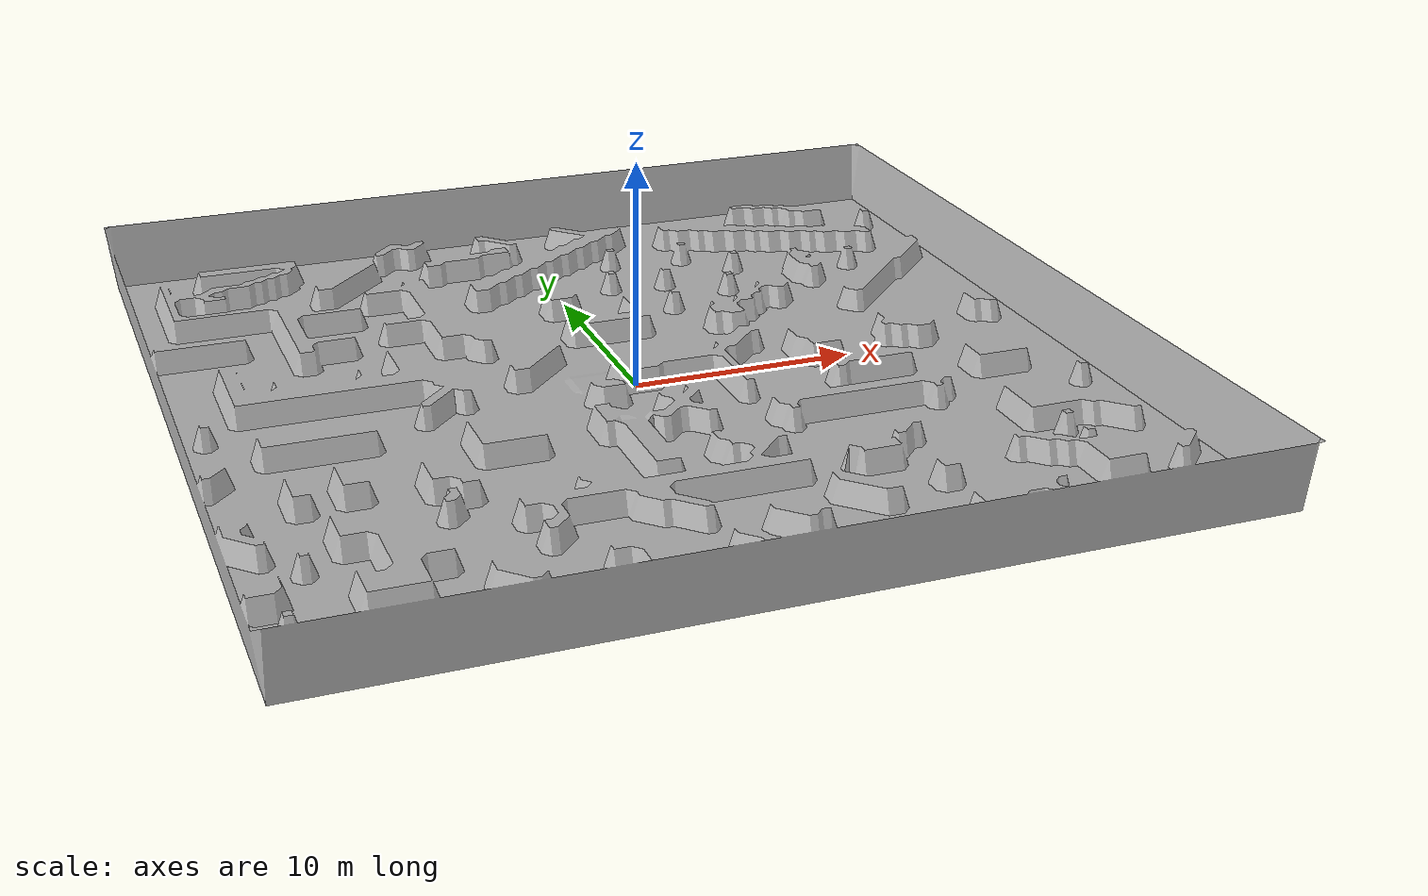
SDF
<sdf version='1.6'>
  <world name='default'>
    <include>
      <uri>model://sun</uri>
    </include>

    <include>
      <name>terrain_4</name>
      <uri>model://terrain_4</uri>
      <pose>0 0 0 0 0 0</pose>
    </include>

    <gui fullscreen='0'>
      <camera name='user_camera'>
        <pose frame=''>9.0 -12.0 6.0 0.0 0.3 2.2</pose>
        <view_controller>orbit</view_controller>
        <projection_type>perspective</projection_type>
      </camera>
    </gui>

  </world>
</sdf>

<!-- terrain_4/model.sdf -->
<sdf version="1.5">
  <model name="terrain_4">
    <pose>0 0 0 0 0 0</pose>
    <static>true</static>
    <link name="body">
      <visual name="visual">
        <geometry>
          <mesh><uri>model://terrain_4/media/terrain_4.dae</uri></mesh>
        </geometry>
      </visual>
      <collision name="collision">
        <geometry>
          <mesh><uri>model://terrain_4/media/terrain_4.dae</uri></mesh>
        </geometry>
        <surface>
	      <bounce>
		<restitution_coefficient>0</restitution_coefficient>
		<threshold>1e+06</threshold>
	      </bounce>
	      <contact>
		<collide_without_contact>0</collide_without_contact>
		<collide_without_contact_bitmask>1</collide_without_contact_bitmask>
		<collide_bitmask>1</collide_bitmask>
		<ode>
		  <soft_cfm>0</soft_cfm>
		  <soft_erp>0.2</soft_erp>
		  <kp>1e+6</kp>
		  <kd>1e+3</kd>
		  <max_vel>0</max_vel>
		  <min_depth>0.001</min_depth>
		</ode>
		<bullet>
		  <split_impulse>1</split_impulse>
		  <split_impulse_penetration_threshold>-0.01</split_impulse_penetration_threshold>
		  <soft_cfm>0</soft_cfm>
		  <soft_erp>0.2</soft_erp>
		  <kp>1e+6</kp>
		  <kd>1e+3</kd>
		</bullet>
	      </contact>
	      <soft_contact>
		<dart>
		  <bone_attachment>10</bone_attachment>
		  <stiffness>10</stiffness>
		  <damping>1</damping>
		</dart>
	      </soft_contact>
	      <friction>
		<ode>
		  <mu>1+e100</mu>
		  <mu2>10000</mu2>
		  <fdir1>0 0 1</fdir1>
		  <slip1>0</slip1>
		  <slip2>0</slip2>
		</ode>
		<torsional>
		  <coefficient>1</coefficient>
		  <patch_radius>0</patch_radius>
		  <surface_radius>0</surface_radius>
		  <use_patch_radius>1</use_patch_radius>
		  <ode>
		    <slip>0</slip>
		  </ode>
		</torsional>
	      </friction>
	    </surface>
      </collision>
    </link>
  </model>
</sdf>
